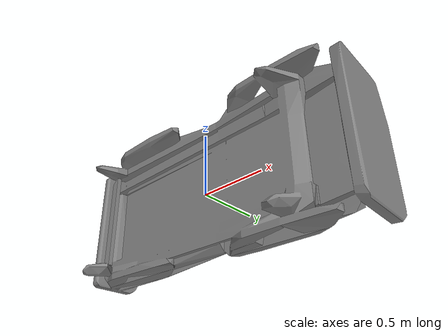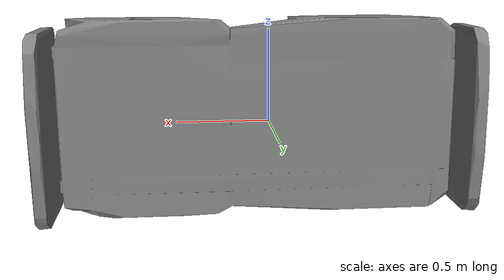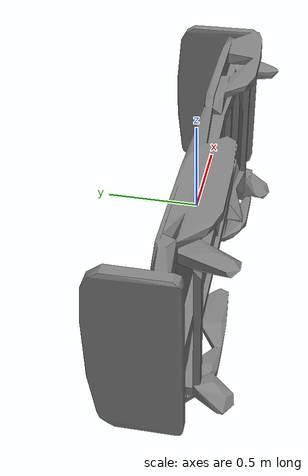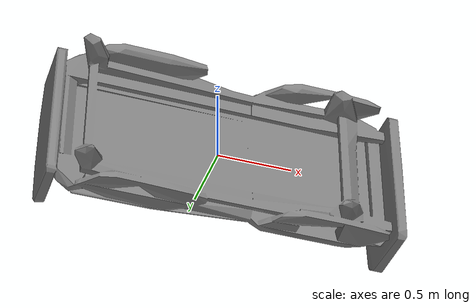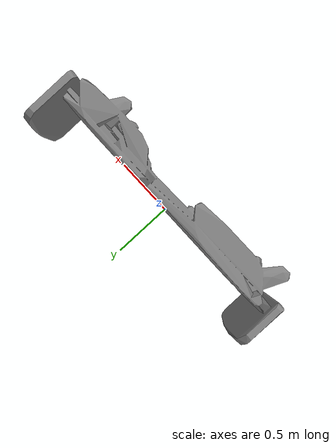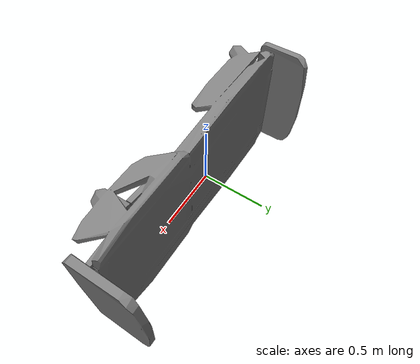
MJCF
<mujoco model="hospital_bed_frame_vhacd">
  <default>
    <default class="visual">
      <geom group="2" type="mesh" contype="0" conaffinity="0"/>
    </default>
    <default class="collision">
      <geom group="3" type="mesh"/>
    </default>
  </default>
  <asset>
    <mesh file="hospital_bed_frame_vhacd.obj"/>
  </asset>
  <worldbody>
    <body name="hospital_bed_frame_vhacd">
      <geom mesh="hospital_bed_frame_vhacd" class="visual"/>
      <geom mesh="hospital_bed_frame_vhacd" class="collision"/>
    </body>
  </worldbody>
</mujoco>
